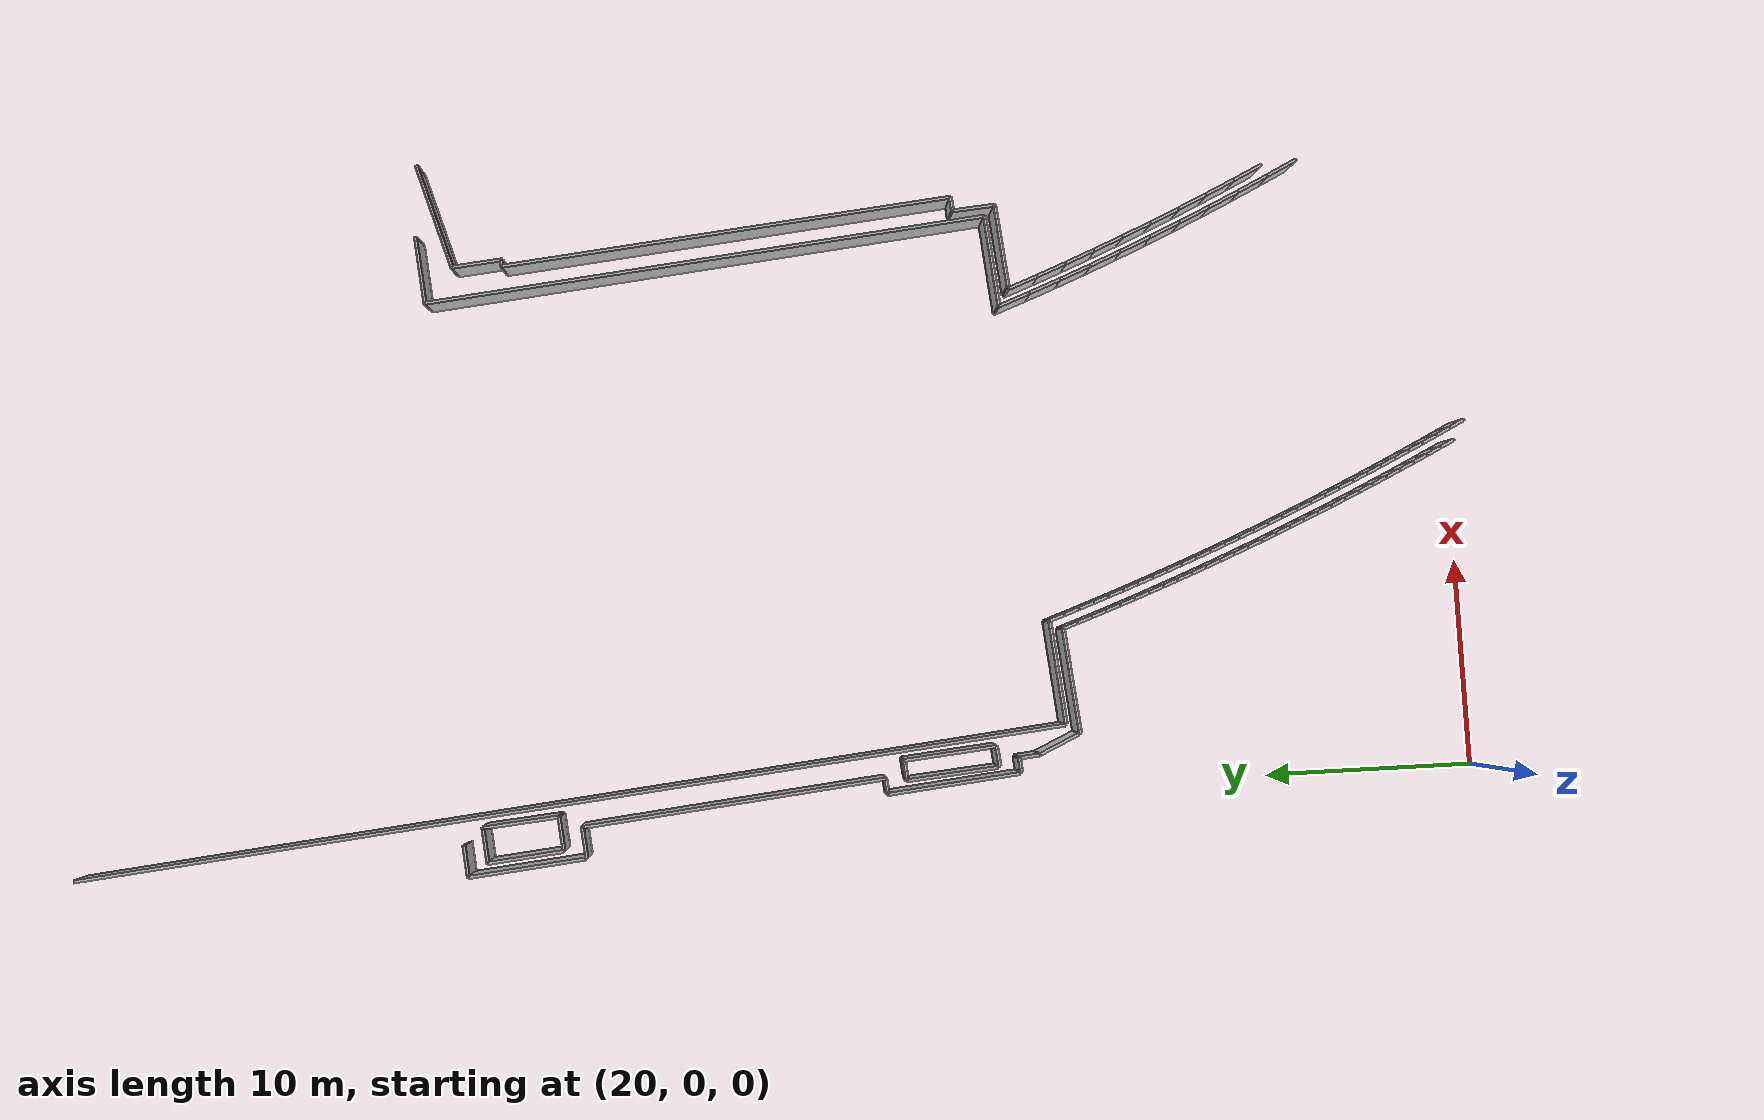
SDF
<sdf version="1.6">
 <model name="sps_0102">
  <static>1</static>
  <allow_auto_disable>0</allow_auto_disable>
  <link name="Wall14">
   <collision name="collision"><geometry><box><size>1.0071 0.15 2.5</size></box></geometry></collision>
   <visual name="visual">
    <geometry><box><size>1.0071 0.15 2.5</size></box></geometry>
    <transparency>0.0</transparency>
   </visual>
   <pose>21.8438 23.3337 1.25 0 0 -3.03692</pose>
  </link>
  <link name="Wall390">
   <collision name="collision"><geometry><box><size>1.50313 0.15 2.5</size></box></geometry></collision>
   <visual name="visual">
    <geometry><box><size>1.50313 0.15 2.5</size></box></geometry>
    <transparency>0.0</transparency>
   </visual>
   <pose>18.8913 43.3753 1.25 0 -0 0.0988727</pose>
  </link>
  <link name="Wall391">
   <collision name="collision"><geometry><box><size>3.67699 0.15 2.5</size></box></geometry></collision>
   <visual name="visual">
    <geometry><box><size>3.67699 0.15 2.5</size></box></geometry>
    <transparency>0.0</transparency>
   </visual>
   <pose>20.05 46.3736 1.25 0 0 -1.48476</pose>
  </link>
  <link name="Wall739">
   <collision name="collision"><geometry><box><size>14.7249 0.15 2.5</size></box></geometry></collision>
   <visual name="visual">
    <geometry><box><size>14.7249 0.15 2.5</size></box></geometry>
    <transparency>0.0</transparency>
   </visual>
   <pose>20.3711 36.1235 1.25 0 0 -1.47123</pose>
  </link>
  <link name="Wall740">
   <collision name="collision"><geometry><box><size>2.18924 0.15 2.5</size></box></geometry></collision>
   <visual name="visual">
    <geometry><box><size>2.18924 0.15 2.5</size></box></geometry>
    <transparency>0.0</transparency>
   </visual>
   <pose>22.2687 20.3126 1.25 0 0 -1.14813</pose>
  </link>
  <link name="Wall748">
   <collision name="collision"><geometry><box><size>0.681234 0.15 2.5</size></box></geometry></collision>
   <visual name="visual">
    <geometry><box><size>0.681234 0.15 2.5</size></box></geometry>
    <transparency>0.0</transparency>
   </visual>
   <pose>48.7126 23.8989 1.25 0 -0 0.0911547</pose>
  </link>
  <link name="Wall1124">
   <collision name="collision"><geometry><box><size>4.48769 0.15 2.5</size></box></geometry></collision>
   <visual name="visual">
    <geometry><box><size>4.48769 0.15 2.5</size></box></geometry>
    <transparency>0.0</transparency>
   </visual>
   <pose>21.1497 25.5166 1.25 0 -0 1.65705</pose>
  </link>
  <link name="Wall1125">
   <collision name="collision"><geometry><box><size>0.978472 0.15 2.5</size></box></geometry></collision>
   <visual name="visual">
    <geometry><box><size>0.978472 0.15 2.5</size></box></geometry>
    <transparency>0.0</transparency>
   </visual>
   <pose>21.4431 27.8019 1.25 0 -0 0.101978</pose>
  </link>
  <link name="Wall1455">
   <collision name="collision"><geometry><box><size>3.68859 0.15 2.5</size></box></geometry></collision>
   <visual name="visual">
    <geometry><box><size>3.68859 0.15 2.5</size></box></geometry>
    <transparency>0.0</transparency>
   </visual>
   <pose>18.3761 46.215 1.25 0 -0 1.66845</pose>
  </link>
  <link name="Wall1456">
   <collision name="collision"><geometry><box><size>1.5184 0.15 2.5</size></box></geometry></collision>
   <visual name="visual">
    <geometry><box><size>1.5184 0.15 2.5</size></box></geometry>
    <transparency>0.0</transparency>
   </visual>
   <pose>18.3368 49.0876 1.25 0 0 -3.05127</pose>
  </link>
  <link name="Wall1457">
   <collision name="collision"><geometry><box><size>1.66012 0.15 2.5</size></box></geometry></collision>
   <visual name="visual">
    <geometry><box><size>1.66012 0.15 2.5</size></box></geometry>
    <transparency>0.0</transparency>
   </visual>
   <pose>19.3819 44.4607 1.25 0 0 -3.0436</pose>
  </link>
  <link name="Wall1462">
   <collision name="collision"><geometry><box><size>0.317018 0.15 2.5</size></box></geometry></collision>
   <visual name="visual">
    <geometry><box><size>0.317018 0.15 2.5</size></box></geometry>
    <transparency>0.0</transparency>
   </visual>
   <pose>47.1035 45.8943 1.25 0 0 -0.00250288</pose>
  </link>
  <link name="Wall1464">
   <collision name="collision"><geometry><box><size>3.2784 0.15 2.5</size></box></geometry></collision>
   <visual name="visual">
    <geometry><box><size>3.2784 0.15 2.5</size></box></geometry>
    <transparency>0.0</transparency>
   </visual>
   <pose>46.9832 49.8738 1.25 0 -0 0.0924364</pose>
  </link>
  <link name="Wall1746">
   <collision name="collision"><geometry><box><size>0.73768 0.15 2.5</size></box></geometry></collision>
   <visual name="visual">
    <geometry><box><size>0.73768 0.15 2.5</size></box></geometry>
    <transparency>0.0</transparency>
   </visual>
   <pose>21.3597 22.2925 1.25 0 -0 0.0972894</pose>
  </link>
  <link name="Wall1747">
   <collision name="collision"><geometry><box><size>1.02168 0.15 2.5</size></box></geometry></collision>
   <visual name="visual">
    <geometry><box><size>1.02168 0.15 2.5</size></box></geometry>
    <transparency>0.0</transparency>
   </visual>
   <pose>21.7732 21.8196 1.25 0 0 -1.47981</pose>
  </link>
  <link name="Wall1749">
   <collision name="collision"><geometry><box><size>48.1522 0.15 2.5</size></box></geometry></collision>
   <visual name="visual">
    <geometry><box><size>48.1522 0.15 2.5</size></box></geometry>
    <transparency>0.0</transparency>
   </visual>
   <pose>20.8261 43.932 1.25 0 0 -1.47302</pose>
  </link>
  <link name="Wall1757">
   <collision name="collision"><geometry><box><size>27.5255 0.15 2.5</size></box></geometry></collision>
   <visual name="visual">
    <geometry><box><size>27.5255 0.15 2.5</size></box></geometry>
    <transparency>0.0</transparency>
   </visual>
   <pose>46.6895 36.025 1.25 0 -0 1.66821</pose>
  </link>
  <link name="Wall2084">
   <collision name="collision"><geometry><box><size>5.74565 0.15 2.5</size></box></geometry></collision>
   <visual name="visual">
    <geometry><box><size>5.74565 0.15 2.5</size></box></geometry>
    <transparency>0.0</transparency>
   </visual>
   <pose>17.8621 46.1601 1.25 0 0 -1.47269</pose>
  </link>
  <link name="Wall2086">
   <collision name="collision"><geometry><box><size>6.48384 0.15 2.5</size></box></geometry></collision>
   <visual name="visual">
    <geometry><box><size>6.48384 0.15 2.5</size></box></geometry>
    <transparency>0.0</transparency>
   </visual>
   <pose>20.6749 25.483 1.25 0 0 -1.47265</pose>
  </link>
  <link name="Wall2092">
   <collision name="collision"><geometry><box><size>2.44032 0.15 2.5</size></box></geometry></collision>
   <visual name="visual">
    <geometry><box><size>2.44032 0.15 2.5</size></box></geometry>
    <transparency>0.0</transparency>
   </visual>
   <pose>47.1479 47.1087 1.25 0 -0 1.66445</pose>
  </link>
  <link name="Wall2093">
   <collision name="collision"><geometry><box><size>4.0578 0.15 2.5</size></box></geometry></collision>
   <visual name="visual">
    <geometry><box><size>4.0578 0.15 2.5</size></box></geometry>
    <transparency>0.0</transparency>
   </visual>
   <pose>46.5181 21.6013 1.25 0 -0 0.0978502</pose>
  </link>
  <link name="Wall2094">
   <collision name="collision"><geometry><box><size>2.07484 0.15 2.5</size></box></geometry></collision>
   <visual name="visual">
    <geometry><box><size>2.07484 0.15 2.5</size></box></geometry>
    <transparency>0.0</transparency>
   </visual>
   <pose>48.4553 22.8337 1.25 0 -0 1.64983</pose>
  </link>
  <link name="Wall2465">
   <collision name="collision"><geometry><box><size>1.70285 0.15 2.5</size></box></geometry></collision>
   <visual name="visual">
    <geometry><box><size>1.70285 0.15 2.5</size></box></geometry>
    <transparency>0.0</transparency>
   </visual>
   <pose>19.0442 48.1279 1.25 0 -0 0.0910233</pose>
  </link>
  <link name="Wall2466">
   <collision name="collision"><geometry><box><size>0.750804 0.15 2.5</size></box></geometry></collision>
   <visual name="visual">
    <geometry><box><size>0.750804 0.15 2.5</size></box></geometry>
    <transparency>0.0</transparency>
   </visual>
   <pose>20.7301 28.7534 1.25 0 0 -3.02385</pose>
  </link>
  <link name="Wall2468">
   <collision name="collision"><geometry><box><size>4.48462 0.15 2.5</size></box></geometry></collision>
   <visual name="visual">
    <geometry><box><size>4.48462 0.15 2.5</size></box></geometry>
    <transparency>0.0</transparency>
   </visual>
   <pose>22.1372 25.619 1.25 0 0 -1.47817</pose>
  </link>
  <link name="Wall2469">
   <collision name="collision"><geometry><box><size>5.09457 0.15 2.5</size></box></geometry></collision>
   <visual name="visual">
    <geometry><box><size>5.09457 0.15 2.5</size></box></geometry>
    <transparency>0.0</transparency>
   </visual>
   <pose>25.2527 19.5641 1.25 0 -0 0.0982298</pose>
  </link>
  <link name="Wall2470">
   <collision name="collision"><geometry><box><size>5.04699 0.15 2.5</size></box></geometry></collision>
   <visual name="visual">
    <geometry><box><size>5.04699 0.15 2.5</size></box></geometry>
    <transparency>0.0</transparency>
   </visual>
   <pose>25.689 20.2064 1.25 0 -0 0.0934606</pose>
  </link>
  <link name="Wall2473">
   <collision name="collision"><geometry><box><size>4.47216 0.15 2.5</size></box></geometry></collision>
   <visual name="visual">
    <geometry><box><size>4.47216 0.15 2.5</size></box></geometry>
    <transparency>0.0</transparency>
   </visual>
   <pose>45.8021 22.1143 1.25 0 -0 0.0954887</pose>
  </link>
  <link name="Wall2474">
   <collision name="collision"><geometry><box><size>22.0656 0.15 2.5</size></box></geometry></collision>
   <visual name="visual">
    <geometry><box><size>22.0656 0.15 2.5</size></box></geometry>
    <transparency>0.0</transparency>
   </visual>
   <pose>47.9984 34.9123 1.25 0 -0 1.66642</pose>
  </link>
  <link name="Wall2477">
   <collision name="collision"><geometry><box><size>5.30921 0.15 2.5</size></box></geometry></collision>
   <visual name="visual">
    <geometry><box><size>5.30921 0.15 2.5</size></box></geometry>
    <transparency>0.0</transparency>
   </visual>
   <pose>49.5821 49.0675 1.25 0 -0 0.284068</pose>
  </link>
  <link name="Wall8902">
   <collision name="collision"><geometry><box><size>0.771644 0.15 2.5</size></box></geometry></collision>
   <visual name="visual">
    <geometry><box><size>0.771644 0.15 2.5</size></box></geometry>
    <transparency>0.0</transparency>
   </visual>
   <pose>28.3252 20.0765 1.25 0 0 -1.24412</pose>
  </link>
  <link name="Wall8903">
   <collision name="collision"><geometry><box><size>0.771516 0.15 2.5</size></box></geometry></collision>
   <visual name="visual">
    <geometry><box><size>0.771516 0.15 2.5</size></box></geometry>
    <transparency>0.0</transparency>
   </visual>
   <pose>28.5745 19.3463 1.25 0 0 -1.23946</pose>
  </link>
  <link name="Wall8904">
   <collision name="collision"><geometry><box><size>0.771678 0.15 2.5</size></box></geometry></collision>
   <visual name="visual">
    <geometry><box><size>0.771678 0.15 2.5</size></box></geometry>
    <transparency>0.0</transparency>
   </visual>
   <pose>28.8274 18.6173 1.25 0 0 -1.23451</pose>
  </link>
  <link name="Wall8905">
   <collision name="collision"><geometry><box><size>0.771459 0.15 2.5</size></box></geometry></collision>
   <visual name="visual">
    <geometry><box><size>0.771459 0.15 2.5</size></box></geometry>
    <transparency>0.0</transparency>
   </visual>
   <pose>29.0824 17.8891 1.25 0 0 -1.23341</pose>
  </link>
  <link name="Wall8906">
   <collision name="collision"><geometry><box><size>0.771648 0.15 2.5</size></box></geometry></collision>
   <visual name="visual">
    <geometry><box><size>0.771648 0.15 2.5</size></box></geometry>
    <transparency>0.0</transparency>
   </visual>
   <pose>29.3397 17.1617 1.25 0 0 -1.22821</pose>
  </link>
  <link name="Wall8907">
   <collision name="collision"><geometry><box><size>0.771462 0.15 2.5</size></box></geometry></collision>
   <visual name="visual">
    <geometry><box><size>0.771462 0.15 2.5</size></box></geometry>
    <transparency>0.0</transparency>
   </visual>
   <pose>29.6005 16.4356 1.25 0 0 -1.2235</pose>
  </link>
  <link name="Wall8908">
   <collision name="collision"><geometry><box><size>0.771507 0.15 2.5</size></box></geometry></collision>
   <visual name="visual">
    <geometry><box><size>0.771507 0.15 2.5</size></box></geometry>
    <transparency>0.0</transparency>
   </visual>
   <pose>29.8649 15.7108 1.25 0 0 -1.21872</pose>
  </link>
  <link name="Wall8909">
   <collision name="collision"><geometry><box><size>0.771477 0.15 2.5</size></box></geometry></collision>
   <visual name="visual">
    <geometry><box><size>0.771477 0.15 2.5</size></box></geometry>
    <transparency>0.0</transparency>
   </visual>
   <pose>30.1327 14.9873 1.25 0 0 -1.21381</pose>
  </link>
  <link name="Wall8910">
   <collision name="collision"><geometry><box><size>0.771457 0.15 2.5</size></box></geometry></collision>
   <visual name="visual">
    <geometry><box><size>0.771457 0.15 2.5</size></box></geometry>
    <transparency>0.0</transparency>
   </visual>
   <pose>30.404 14.2651 1.25 0 0 -1.20916</pose>
  </link>
  <link name="Wall8911">
   <collision name="collision"><geometry><box><size>0.771595 0.15 2.5</size></box></geometry></collision>
   <visual name="visual">
    <geometry><box><size>0.771595 0.15 2.5</size></box></geometry>
    <transparency>0.0</transparency>
   </visual>
   <pose>30.6789 13.5442 1.25 0 0 -1.2038</pose>
  </link>
  <link name="Wall8912">
   <collision name="collision"><geometry><box><size>0.771475 0.15 2.5</size></box></geometry></collision>
   <visual name="visual">
    <geometry><box><size>0.771475 0.15 2.5</size></box></geometry>
    <transparency>0.0</transparency>
   </visual>
   <pose>30.9574 12.8247 1.25 0 0 -1.19916</pose>
  </link>
  <link name="Wall8913">
   <collision name="collision"><geometry><box><size>0.771507 0.15 2.5</size></box></geometry></collision>
   <visual name="visual">
    <geometry><box><size>0.771507 0.15 2.5</size></box></geometry>
    <transparency>0.0</transparency>
   </visual>
   <pose>31.2393 12.1066 1.25 0 0 -1.19408</pose>
  </link>
  <link name="Wall8914">
   <collision name="collision"><geometry><box><size>0.771468 0.15 2.5</size></box></geometry></collision>
   <visual name="visual">
    <geometry><box><size>0.771468 0.15 2.5</size></box></geometry>
    <transparency>0.0</transparency>
   </visual>
   <pose>31.5249 11.3899 1.25 0 0 -1.18929</pose>
  </link>
  <link name="Wall8915">
   <collision name="collision"><geometry><box><size>0.771492 0.15 2.5</size></box></geometry></collision>
   <visual name="visual">
    <geometry><box><size>0.771492 0.15 2.5</size></box></geometry>
    <transparency>0.0</transparency>
   </visual>
   <pose>31.8139 10.6746 1.25 0 0 -1.18435</pose>
  </link>
  <link name="Wall8916">
   <collision name="collision"><geometry><box><size>0.771659 0.15 2.5</size></box></geometry></collision>
   <visual name="visual">
    <geometry><box><size>0.771659 0.15 2.5</size></box></geometry>
    <transparency>0.0</transparency>
   </visual>
   <pose>32.1063 9.96059 1.25 0 0 -1.17966</pose>
  </link>
  <link name="Wall8917">
   <collision name="collision"><geometry><box><size>0.771405 0.15 2.5</size></box></geometry></collision>
   <visual name="visual">
    <geometry><box><size>0.771405 0.15 2.5</size></box></geometry>
    <transparency>0.0</transparency>
   </visual>
   <pose>32.4023 9.24809 1.25 0 0 -1.17447</pose>
  </link>
  <link name="Wall8918">
   <collision name="collision"><geometry><box><size>0.771439 0.15 2.5</size></box></geometry></collision>
   <visual name="visual">
    <geometry><box><size>0.771439 0.15 2.5</size></box></geometry>
    <transparency>0.0</transparency>
   </visual>
   <pose>32.7018 8.53718 1.25 0 0 -1.16968</pose>
  </link>
  <link name="Wall8919">
   <collision name="collision"><geometry><box><size>0.771562 0.15 2.5</size></box></geometry></collision>
   <visual name="visual">
    <geometry><box><size>0.771562 0.15 2.5</size></box></geometry>
    <transparency>0.0</transparency>
   </visual>
   <pose>33.0048 7.82768 1.25 0 0 -1.16467</pose>
  </link>
  <link name="Wall8920">
   <collision name="collision"><geometry><box><size>0.771632 0.15 2.5</size></box></geometry></collision>
   <visual name="visual">
    <geometry><box><size>0.771632 0.15 2.5</size></box></geometry>
    <transparency>0.0</transparency>
   </visual>
   <pose>33.3114 7.11958 1.25 0 0 -1.15988</pose>
  </link>
  <link name="Wall8921">
   <collision name="collision"><geometry><box><size>0.771527 0.15 2.5</size></box></geometry></collision>
   <visual name="visual">
    <geometry><box><size>0.771527 0.15 2.5</size></box></geometry>
    <transparency>0.0</transparency>
   </visual>
   <pose>33.6213 6.41298 1.25 0 0 -1.15507</pose>
  </link>
  <link name="Wall8922">
   <collision name="collision"><geometry><box><size>0.771409 0.15 2.5</size></box></geometry></collision>
   <visual name="visual">
    <geometry><box><size>0.771409 0.15 2.5</size></box></geometry>
    <transparency>0.0</transparency>
   </visual>
   <pose>33.9346 5.70799 1.25 0 0 -1.15015</pose>
  </link>
  <link name="Wall8923">
   <collision name="collision"><geometry><box><size>0.771496 0.15 2.5</size></box></geometry></collision>
   <visual name="visual">
    <geometry><box><size>0.771496 0.15 2.5</size></box></geometry>
    <transparency>0.0</transparency>
   </visual>
   <pose>34.2514 5.00459 1.25 0 0 -1.14509</pose>
  </link>
  <link name="Wall8924">
   <collision name="collision"><geometry><box><size>0.771557 0.15 2.5</size></box></geometry></collision>
   <visual name="visual">
    <geometry><box><size>0.771557 0.15 2.5</size></box></geometry>
    <transparency>0.0</transparency>
   </visual>
   <pose>34.5716 4.30269 1.25 0 0 -1.14034</pose>
  </link>
  <link name="Wall8925">
   <collision name="collision"><geometry><box><size>0.771333 0.15 2.5</size></box></geometry></collision>
   <visual name="visual">
    <geometry><box><size>0.771333 0.15 2.5</size></box></geometry>
    <transparency>0.0</transparency>
   </visual>
   <pose>34.8953 3.6024 1.25 0 0 -1.1355</pose>
  </link>
  <link name="Wall8926">
   <collision name="collision"><geometry><box><size>0.771562 0.15 2.5</size></box></geometry></collision>
   <visual name="visual">
    <geometry><box><size>0.771562 0.15 2.5</size></box></geometry>
    <transparency>0.0</transparency>
   </visual>
   <pose>35.2223 2.9037 1.25 0 0 -1.13057</pose>
  </link>
  <link name="Wall8927">
   <collision name="collision"><geometry><box><size>0.771506 0.15 2.5</size></box></geometry></collision>
   <visual name="visual">
    <geometry><box><size>0.771506 0.15 2.5</size></box></geometry>
    <transparency>0.0</transparency>
   </visual>
   <pose>35.5529 2.20659 1.25 0 0 -1.12537</pose>
  </link>
  <link name="Wall8928">
   <collision name="collision"><geometry><box><size>0.771559 0.15 2.5</size></box></geometry></collision>
   <visual name="visual">
    <geometry><box><size>0.771559 0.15 2.5</size></box></geometry>
    <transparency>0.0</transparency>
   </visual>
   <pose>35.8869 1.51109 1.25 0 0 -1.12084</pose>
  </link>
  <link name="Wall8929">
   <collision name="collision"><geometry><box><size>0.771462 0.15 2.5</size></box></geometry></collision>
   <visual name="visual">
    <geometry><box><size>0.771462 0.15 2.5</size></box></geometry>
    <transparency>0.0</transparency>
   </visual>
   <pose>36.2241 0.817214 1.25 0 0 -1.11585</pose>
  </link>
  <link name="Wall8930">
   <collision name="collision"><geometry><box><size>0.771465 0.15 2.5</size></box></geometry></collision>
   <visual name="visual">
    <geometry><box><size>0.771465 0.15 2.5</size></box></geometry>
    <transparency>0.0</transparency>
   </visual>
   <pose>36.5649 0.125106 1.25 0 0 -1.11065</pose>
  </link>
  <link name="Wall8983">
   <collision name="collision"><geometry><box><size>1.53035 0.15 2.5</size></box></geometry></collision>
   <visual name="visual">
    <geometry><box><size>1.53035 0.15 2.5</size></box></geometry>
    <transparency>0.0</transparency>
   </visual>
   <pose>44.6632 20.6743 1.25 0 0 -1.21559</pose>
  </link>
  <link name="Wall8984">
   <collision name="collision"><geometry><box><size>1.53018 0.15 2.5</size></box></geometry></collision>
   <visual name="visual">
    <geometry><box><size>1.53018 0.15 2.5</size></box></geometry>
    <transparency>0.0</transparency>
   </visual>
   <pose>45.2032 19.2425 1.25 0 0 -1.20468</pose>
  </link>
  <link name="Wall8985">
   <collision name="collision"><geometry><box><size>1.5303 0.15 2.5</size></box></geometry></collision>
   <visual name="visual">
    <geometry><box><size>1.5303 0.15 2.5</size></box></geometry>
    <transparency>0.0</transparency>
   </visual>
   <pose>45.7586 17.8166 1.25 0 0 -1.19405</pose>
  </link>
  <link name="Wall8986">
   <collision name="collision"><geometry><box><size>1.53031 0.15 2.5</size></box></geometry></collision>
   <visual name="visual">
    <geometry><box><size>1.53031 0.15 2.5</size></box></geometry>
    <transparency>0.0</transparency>
   </visual>
   <pose>46.3292 16.3967 1.25 0 0 -1.18322</pose>
  </link>
  <link name="Wall8987">
   <collision name="collision"><geometry><box><size>1.53031 0.15 2.5</size></box></geometry></collision>
   <visual name="visual">
    <geometry><box><size>1.53031 0.15 2.5</size></box></geometry>
    <transparency>0.0</transparency>
   </visual>
   <pose>46.9153 14.9831 1.25 0 0 -1.1723</pose>
  </link>
  <link name="Wall8988">
   <collision name="collision"><geometry><box><size>1.53031 0.15 2.5</size></box></geometry></collision>
   <visual name="visual">
    <geometry><box><size>1.53031 0.15 2.5</size></box></geometry>
    <transparency>0.0</transparency>
   </visual>
   <pose>47.5167 13.5759 1.25 0 0 -1.16163</pose>
  </link>
  <link name="Wall8989">
   <collision name="collision"><geometry><box><size>1.53038 0.15 2.5</size></box></geometry></collision>
   <visual name="visual">
    <geometry><box><size>1.53038 0.15 2.5</size></box></geometry>
    <transparency>0.0</transparency>
   </visual>
   <pose>48.133 12.1752 1.25 0 0 -1.15084</pose>
  </link>
  <link name="Wall8990">
   <collision name="collision"><geometry><box><size>1.53026 0.15 2.5</size></box></geometry></collision>
   <visual name="visual">
    <geometry><box><size>1.53026 0.15 2.5</size></box></geometry>
    <transparency>0.0</transparency>
   </visual>
   <pose>48.7645 10.7813 1.25 0 0 -1.13999</pose>
  </link>
  <link name="Wall8991">
   <collision name="collision"><geometry><box><size>1.53038 0.15 2.5</size></box></geometry></collision>
   <visual name="visual">
    <geometry><box><size>1.53038 0.15 2.5</size></box></geometry>
    <transparency>0.0</transparency>
   </visual>
   <pose>49.4111 9.39427 1.25 0 0 -1.12925</pose>
  </link>
  <link name="Wall18881">
   <collision name="collision"><geometry><box><size>1.6216 0.15 2.5</size></box></geometry></collision>
   <visual name="visual">
    <geometry><box><size>1.6216 0.15 2.5</size></box></geometry>
    <transparency>0.0</transparency>
   </visual>
   <pose>43.8541 21.1394 1.25 0 0 -1.22096</pose>
  </link>
  <link name="Wall18882">
   <collision name="collision"><geometry><box><size>1.62164 0.15 2.5</size></box></geometry></collision>
   <visual name="visual">
    <geometry><box><size>1.62164 0.15 2.5</size></box></geometry>
    <transparency>0.0</transparency>
   </visual>
   <pose>44.4185 19.6192 1.25 0 0 -1.20965</pose>
  </link>
  <link name="Wall18883">
   <collision name="collision"><geometry><box><size>1.62143 0.15 2.5</size></box></geometry></collision>
   <visual name="visual">
    <geometry><box><size>1.62143 0.15 2.5</size></box></geometry>
    <transparency>0.0</transparency>
   </visual>
   <pose>45.0001 18.1056 1.25 0 0 -1.19823</pose>
  </link>
  <link name="Wall18884">
   <collision name="collision"><geometry><box><size>1.62156 0.15 2.5</size></box></geometry></collision>
   <visual name="visual">
    <geometry><box><size>1.62156 0.15 2.5</size></box></geometry>
    <transparency>0.0</transparency>
   </visual>
   <pose>45.5994 16.5989 1.25 0 0 -1.18631</pose>
  </link>
  <link name="Wall18885">
   <collision name="collision"><geometry><box><size>1.62158 0.15 2.5</size></box></geometry></collision>
   <visual name="visual">
    <geometry><box><size>1.62158 0.15 2.5</size></box></geometry>
    <transparency>0.0</transparency>
   </visual>
   <pose>46.2161 15.0992 1.25 0 0 -1.175</pose>
  </link>
  <link name="Wall18886">
   <collision name="collision"><geometry><box><size>1.62153 0.15 2.5</size></box></geometry></collision>
   <visual name="visual">
    <geometry><box><size>1.62153 0.15 2.5</size></box></geometry>
    <transparency>0.0</transparency>
   </visual>
   <pose>46.8497 13.6066 1.25 0 0 -1.16371</pose>
  </link>
  <link name="Wall18887">
   <collision name="collision"><geometry><box><size>1.62152 0.15 2.5</size></box></geometry></collision>
   <visual name="visual">
    <geometry><box><size>1.62152 0.15 2.5</size></box></geometry>
    <transparency>0.0</transparency>
   </visual>
   <pose>47.5002 12.1213 1.25 0 0 -1.15228</pose>
  </link>
  <link name="Wall18888">
   <collision name="collision"><geometry><box><size>1.6216 0.15 2.5</size></box></geometry></collision>
   <visual name="visual">
    <geometry><box><size>1.6216 0.15 2.5</size></box></geometry>
    <transparency>0.0</transparency>
   </visual>
   <pose>48.1677 10.6435 1.25 0 0 -1.14082</pose>
  </link>
  <link name="Wall18889">
   <collision name="collision"><geometry><box><size>1.62148 0.15 2.5</size></box></geometry></collision>
   <visual name="visual">
    <geometry><box><size>1.62148 0.15 2.5</size></box></geometry>
    <transparency>0.0</transparency>
   </visual>
   <pose>48.8519 9.17342 1.25 0 0 -1.12957</pose>
  </link>
  <link name="Wall18890">
   <collision name="collision"><geometry><box><size>1.62155 0.15 2.5</size></box></geometry></collision>
   <visual name="visual">
    <geometry><box><size>1.62155 0.15 2.5</size></box></geometry>
    <transparency>0.0</transparency>
   </visual>
   <pose>49.5527 7.7112 1.25 0 0 -1.11816</pose>
  </link>
  <link name="Wall20856">
   <collision name="collision"><geometry><box><size>0.747012 0.15 2.5</size></box></geometry></collision>
   <visual name="visual">
    <geometry><box><size>0.747012 0.15 2.5</size></box></geometry>
    <transparency>0.0</transparency>
   </visual>
   <pose>27.9071 19.46 1.25 0 0 -1.24545</pose>
  </link>
  <link name="Wall20857">
   <collision name="collision"><geometry><box><size>0.74713 0.15 2.5</size></box></geometry></collision>
   <visual name="visual">
    <geometry><box><size>0.74713 0.15 2.5</size></box></geometry>
    <transparency>0.0</transparency>
   </visual>
   <pose>28.1475 18.7527 1.25 0 0 -1.24068</pose>
  </link>
  <link name="Wall20858">
   <collision name="collision"><geometry><box><size>0.747149 0.15 2.5</size></box></geometry></collision>
   <visual name="visual">
    <geometry><box><size>0.747149 0.15 2.5</size></box></geometry>
    <transparency>0.0</transparency>
   </visual>
   <pose>28.3914 18.0465 1.25 0 0 -1.23584</pose>
  </link>
  <link name="Wall20859">
   <collision name="collision"><geometry><box><size>0.753501 0.15 2.5</size></box></geometry></collision>
   <visual name="visual">
    <geometry><box><size>0.753501 0.15 2.5</size></box></geometry>
    <transparency>0.0</transparency>
   </visual>
   <pose>28.6399 17.3385 1.25 0 0 -1.23088</pose>
  </link>
  <link name="Wall20860">
   <collision name="collision"><geometry><box><size>0.753477 0.15 2.5</size></box></geometry></collision>
   <visual name="visual">
    <geometry><box><size>0.753477 0.15 2.5</size></box></geometry>
    <transparency>0.0</transparency>
   </visual>
   <pose>28.8928 16.6287 1.25 0 0 -1.22614</pose>
  </link>
  <link name="Wall20861">
   <collision name="collision"><geometry><box><size>0.753315 0.15 2.5</size></box></geometry></collision>
   <visual name="visual">
    <geometry><box><size>0.753315 0.15 2.5</size></box></geometry>
    <transparency>0.0</transparency>
   </visual>
   <pose>29.1489 15.9202 1.25 0 0 -1.2215</pose>
  </link>
  <link name="Wall20862">
   <collision name="collision"><geometry><box><size>0.753518 0.15 2.5</size></box></geometry></collision>
   <visual name="visual">
    <geometry><box><size>0.753518 0.15 2.5</size></box></geometry>
    <transparency>0.0</transparency>
   </visual>
   <pose>29.4085 15.2129 1.25 0 0 -1.21677</pose>
  </link>
  <link name="Wall20863">
   <collision name="collision"><geometry><box><size>0.753602 0.15 2.5</size></box></geometry></collision>
   <visual name="visual">
    <geometry><box><size>0.753602 0.15 2.5</size></box></geometry>
    <transparency>0.0</transparency>
   </visual>
   <pose>29.6714 14.5067 1.25 0 0 -1.21205</pose>
  </link>
  <link name="Wall20864">
   <collision name="collision"><geometry><box><size>0.75344 0.15 2.5</size></box></geometry></collision>
   <visual name="visual">
    <geometry><box><size>0.75344 0.15 2.5</size></box></geometry>
    <transparency>0.0</transparency>
   </visual>
   <pose>29.9377 13.8018 1.25 0 0 -1.20712</pose>
  </link>
  <link name="Wall20865">
   <collision name="collision"><geometry><box><size>0.753493 0.15 2.5</size></box></geometry></collision>
   <visual name="visual">
    <geometry><box><size>0.753493 0.15 2.5</size></box></geometry>
    <transparency>0.0</transparency>
   </visual>
   <pose>30.2073 13.0982 1.25 0 0 -1.20264</pose>
  </link>
  <link name="Wall20866">
   <collision name="collision"><geometry><box><size>0.753489 0.15 2.5</size></box></geometry></collision>
   <visual name="visual">
    <geometry><box><size>0.753489 0.15 2.5</size></box></geometry>
    <transparency>0.0</transparency>
   </visual>
   <pose>30.4802 12.3959 1.25 0 0 -1.19751</pose>
  </link>
  <link name="Wall20867">
   <collision name="collision"><geometry><box><size>0.753426 0.15 2.5</size></box></geometry></collision>
   <visual name="visual">
    <geometry><box><size>0.753426 0.15 2.5</size></box></geometry>
    <transparency>0.0</transparency>
   </visual>
   <pose>30.7566 11.695 1.25 0 0 -1.19286</pose>
  </link>
  <link name="Wall20868">
   <collision name="collision"><geometry><box><size>0.753414 0.15 2.5</size></box></geometry></collision>
   <visual name="visual">
    <geometry><box><size>0.753414 0.15 2.5</size></box></geometry>
    <transparency>0.0</transparency>
   </visual>
   <pose>31.0362 10.9954 1.25 0 0 -1.18832</pose>
  </link>
  <link name="Wall20869">
   <collision name="collision"><geometry><box><size>0.753692 0.15 2.5</size></box></geometry></collision>
   <visual name="visual">
    <geometry><box><size>0.753692 0.15 2.5</size></box></geometry>
    <transparency>0.0</transparency>
   </visual>
   <pose>31.3192 10.297 1.25 0 0 -1.18331</pose>
  </link>
  <link name="Wall20870">
   <collision name="collision"><geometry><box><size>0.753397 0.15 2.5</size></box></geometry></collision>
   <visual name="visual">
    <geometry><box><size>0.753397 0.15 2.5</size></box></geometry>
    <transparency>0.0</transparency>
   </visual>
   <pose>31.6056 9.59999 1.25 0 0 -1.17851</pose>
  </link>
  <link name="Wall20871">
   <collision name="collision"><geometry><box><size>0.753448 0.15 2.5</size></box></geometry></collision>
   <visual name="visual">
    <geometry><box><size>0.753448 0.15 2.5</size></box></geometry>
    <transparency>0.0</transparency>
   </visual>
   <pose>31.8953 8.90449 1.25 0 0 -1.17371</pose>
  </link>
  <link name="Wall20872">
   <collision name="collision"><geometry><box><size>0.753581 0.15 2.5</size></box></geometry></collision>
   <visual name="visual">
    <geometry><box><size>0.753581 0.15 2.5</size></box></geometry>
    <transparency>0.0</transparency>
   </visual>
   <pose>32.1883 8.21028 1.25 0 0 -1.16913</pose>
  </link>
  <link name="Wall20873">
   <collision name="collision"><geometry><box><size>0.753386 0.15 2.5</size></box></geometry></collision>
   <visual name="visual">
    <geometry><box><size>0.753386 0.15 2.5</size></box></geometry>
    <transparency>0.0</transparency>
   </visual>
   <pose>32.4846 7.5175 1.25 0 0 -1.16417</pose>
  </link>
  <link name="Wall20874">
   <collision name="collision"><geometry><box><size>0.753441 0.15 2.5</size></box></geometry></collision>
   <visual name="visual">
    <geometry><box><size>0.753441 0.15 2.5</size></box></geometry>
    <transparency>0.0</transparency>
   </visual>
   <pose>32.7842 6.82622 1.25 0 0 -1.15952</pose>
  </link>
  <link name="Wall20875">
   <collision name="collision"><geometry><box><size>0.753529 0.15 2.5</size></box></geometry></collision>
   <visual name="visual">
    <geometry><box><size>0.753529 0.15 2.5</size></box></geometry>
    <transparency>0.0</transparency>
   </visual>
   <pose>33.0871 6.13631 1.25 0 0 -1.15462</pose>
  </link>
  <link name="Wall20876">
   <collision name="collision"><geometry><box><size>0.753536 0.15 2.5</size></box></geometry></collision>
   <visual name="visual">
    <geometry><box><size>0.753536 0.15 2.5</size></box></geometry>
    <transparency>0.0</transparency>
   </visual>
   <pose>33.3934 5.4478 1.25 0 0 -1.15001</pose>
  </link>
  <link name="Wall20877">
   <collision name="collision"><geometry><box><size>0.753393 0.15 2.5</size></box></geometry></collision>
   <visual name="visual">
    <geometry><box><size>0.753393 0.15 2.5</size></box></geometry>
    <transparency>0.0</transparency>
   </visual>
   <pose>33.7028 4.76079 1.25 0 0 -1.14531</pose>
  </link>
  <link name="Wall20878">
   <collision name="collision"><geometry><box><size>0.753534 0.15 2.5</size></box></geometry></collision>
   <visual name="visual">
    <geometry><box><size>0.753534 0.15 2.5</size></box></geometry>
    <transparency>0.0</transparency>
   </visual>
   <pose>34.0154 4.07527 1.25 0 0 -1.14041</pose>
  </link>
  <link name="Wall20879">
   <collision name="collision"><geometry><box><size>0.753395 0.15 2.5</size></box></geometry></collision>
   <visual name="visual">
    <geometry><box><size>0.753395 0.15 2.5</size></box></geometry>
    <transparency>0.0</transparency>
   </visual>
   <pose>34.3314 3.39128 1.25 0 0 -1.13559</pose>
  </link>
  <link name="Wall20880">
   <collision name="collision"><geometry><box><size>0.753523 0.15 2.5</size></box></geometry></collision>
   <visual name="visual">
    <geometry><box><size>0.753523 0.15 2.5</size></box></geometry>
    <transparency>0.0</transparency>
   </visual>
   <pose>34.6507 2.70878 1.25 0 0 -1.13102</pose>
  </link>
  <link name="Wall20881">
   <collision name="collision"><geometry><box><size>0.753226 0.15 2.5</size></box></geometry></collision>
   <visual name="visual">
    <geometry><box><size>0.753226 0.15 2.5</size></box></geometry>
    <transparency>0.0</transparency>
   </visual>
   <pose>34.973 2.02788 1.25 0 0 -1.12618</pose>
  </link>
  <link name="Wall20882">
   <collision name="collision"><geometry><box><size>0.753464 0.15 2.5</size></box></geometry></collision>
   <visual name="visual">
    <geometry><box><size>0.753464 0.15 2.5</size></box></geometry>
    <transparency>0.0</transparency>
   </visual>
   <pose>35.2988 1.34859 1.25 0 0 -1.12121</pose>
  </link>
  <link name="Wall20883">
   <collision name="collision"><geometry><box><size>0.753561 0.15 2.5</size></box></geometry></collision>
   <visual name="visual">
    <geometry><box><size>0.753561 0.15 2.5</size></box></geometry>
    <transparency>0.0</transparency>
   </visual>
   <pose>35.6278 0.670699 1.25 0 0 -1.11668</pose>
  </link>
 </model>
</sdf>
